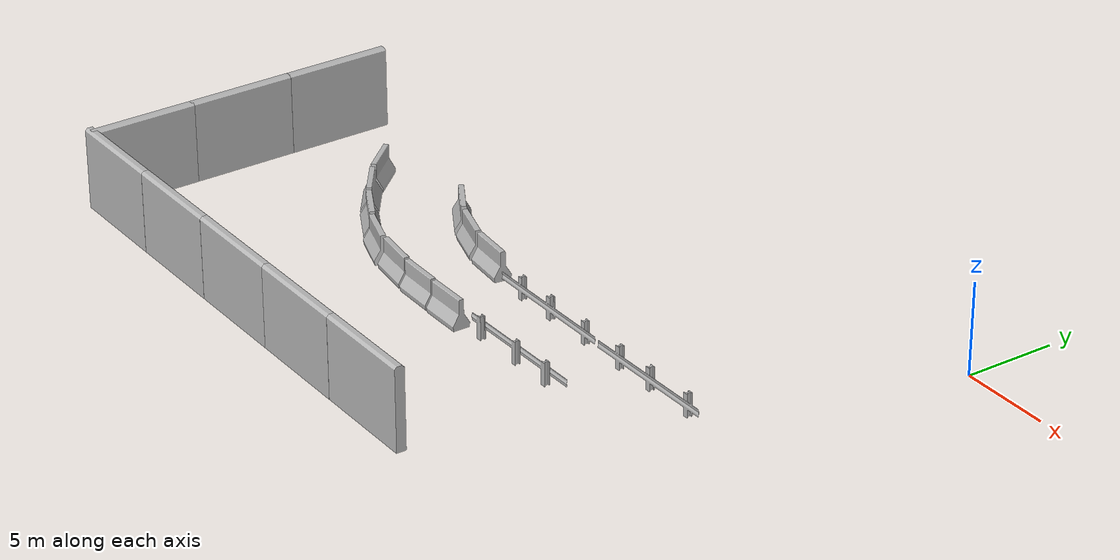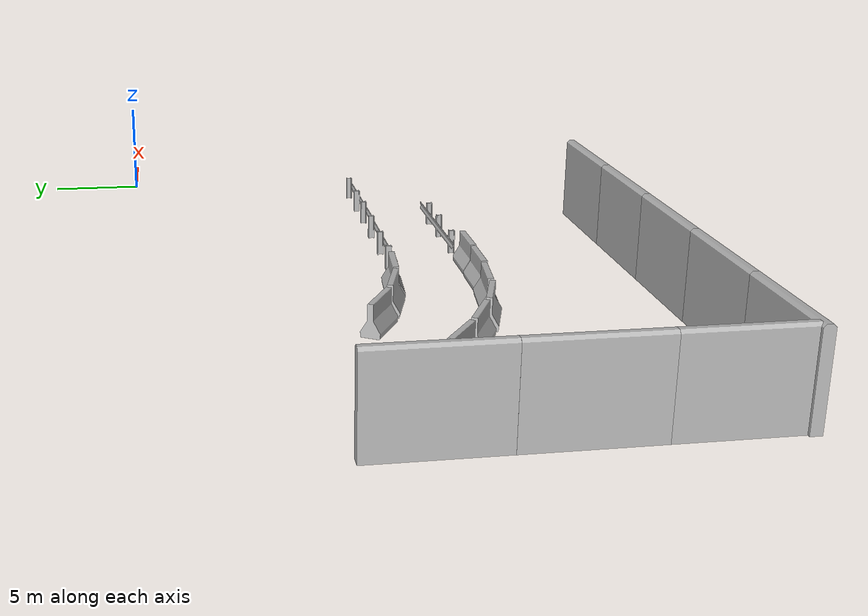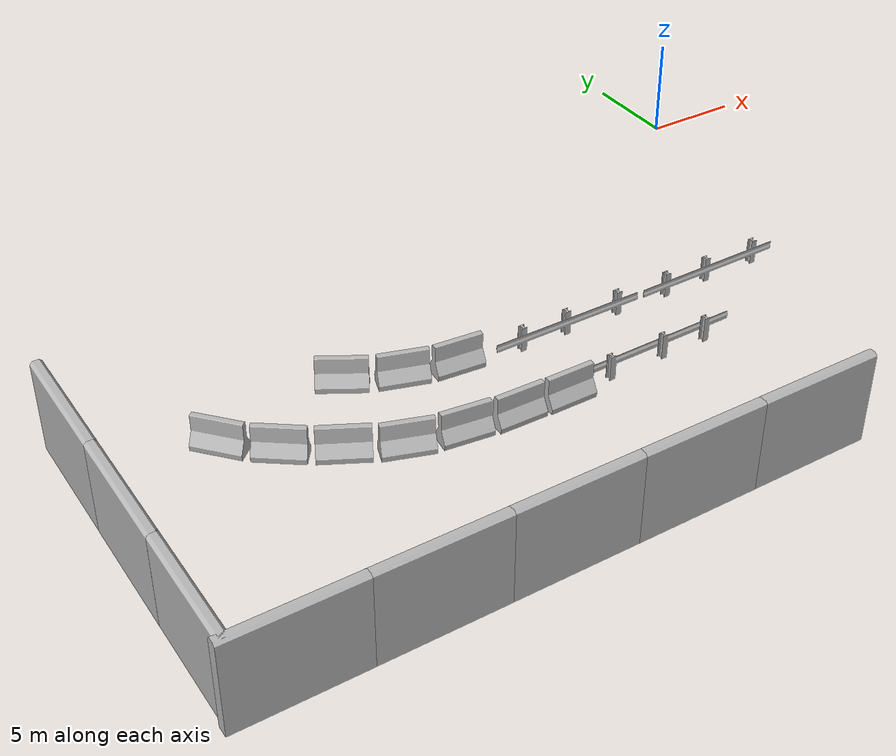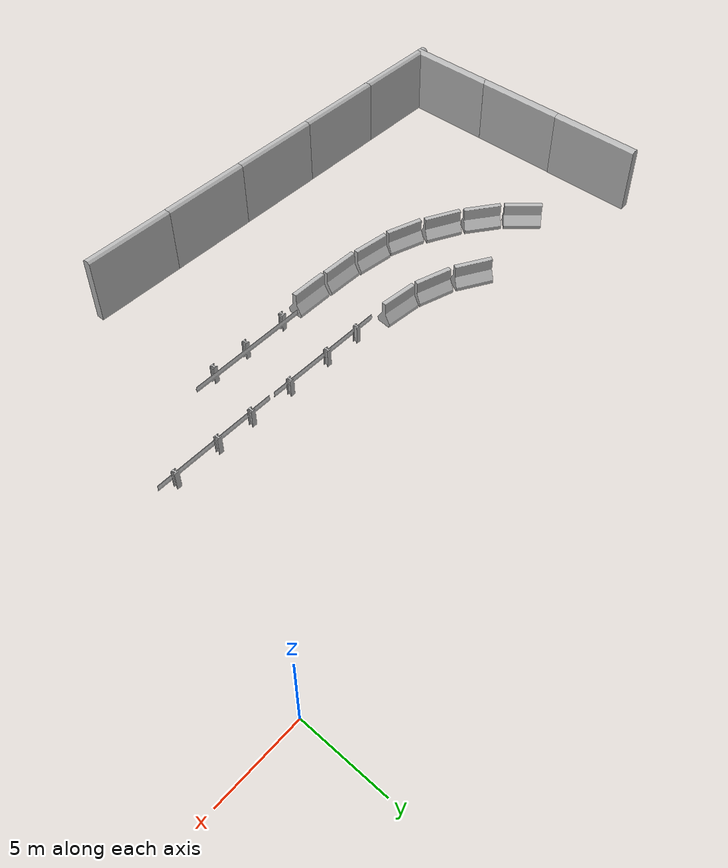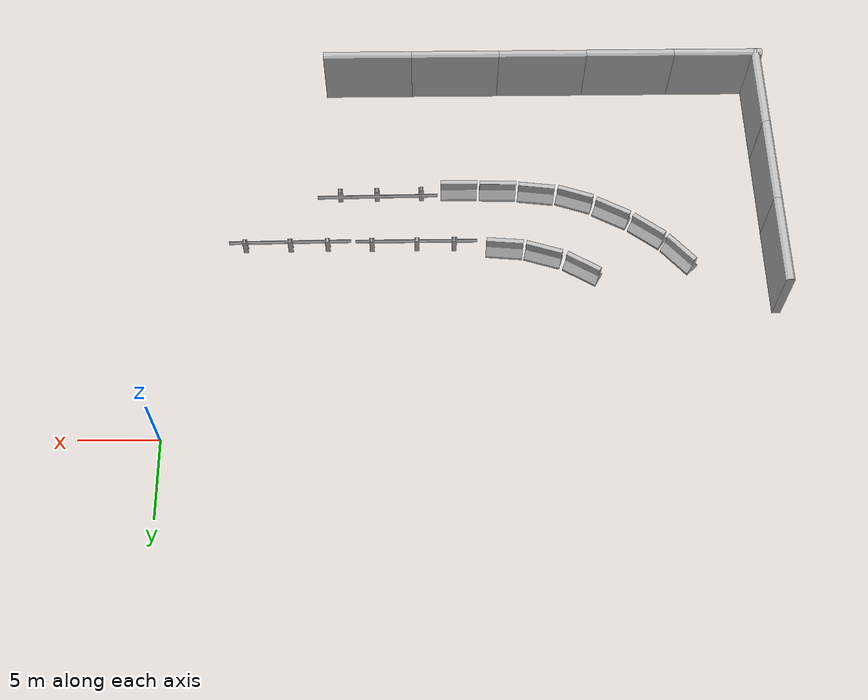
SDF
<sdf version="1.7">
 <world name="default">
  <model name="aws_robomaker_racetrack_Fence_01_04">
   <frame name="aws_Fence_01::__model__" attached_to="aws_Fence_01::body">
    <pose relative_to="__model__">0 0 0 0 -0 0</pose>
   </frame>
   <link name="aws_Fence_01::body">
    <pose relative_to="aws_Fence_01::__model__">0 0 0 0 -0 0</pose>
    <inertial>
     <mass>5</mass>
     <inertia><ixx>1</ixx><ixy>0</ixy><ixz>0</ixz><iyy>1</iyy><iyz>0</iyz><izz>1</izz></inertia>
    </inertial>
    <visual name="visual">
     <geometry>
      <mesh><uri>file://models/aws_robomaker_racetrack_Fence_01/meshes/aws_Fence_01_visual.DAE</uri></mesh>
     </geometry>
     <material><shader type="pixel"><normal_map>__default__</normal_map></shader></material>
     <meta><layer>0</layer></meta>
    </visual>
    <collision name="collision_0">
     <geometry>
      <mesh>
       <uri>file://models/aws_robomaker_racetrack_Fence_01/meshes/aws_Fence_01_collision.DAE</uri>
       <scale>1 1 1</scale>
      </mesh>
     </geometry>
     <surface>
      <friction>
       <ode><mu>1</mu><mu2>1</mu2><fdir1>0 0 0</fdir1><slip1>0</slip1><slip2>0</slip2></ode>
       <torsional>
        <coefficient>1</coefficient>
        <patch_radius>0</patch_radius>
        <surface_radius>0</surface_radius>
        <use_patch_radius>1</use_patch_radius>
        <ode><slip>0</slip></ode>
       </torsional>
      </friction>
      <bounce><restitution_coefficient>0</restitution_coefficient><threshold>1e+06</threshold></bounce>
      <contact>
       <collide_without_contact>0</collide_without_contact>
       <collide_without_contact_bitmask>1</collide_without_contact_bitmask>
       <collide_bitmask>1</collide_bitmask>
       <ode>
        <soft_cfm>0</soft_cfm>
        <soft_erp>0.2</soft_erp>
        <kp>1e+13</kp>
        <kd>1</kd>
        <max_vel>0.01</max_vel>
        <min_depth>0</min_depth>
       </ode>
       <bullet>
        <split_impulse>1</split_impulse>
        <split_impulse_penetration_threshold>-0.01</split_impulse_penetration_threshold>
        <soft_cfm>0</soft_cfm>
        <soft_erp>0.2</soft_erp>
        <kp>1e+13</kp>
        <kd>1</kd>
       </bullet>
      </contact>
     </surface>
    </collision>
   </link>
   <static>1</static>
   <pose>-12.9904 -16.8572 0.054 0 0 -1.55861</pose>
  </model>
  <model name="aws_robomaker_racetrack_Fence_01_08">
   <frame name="aws_Fence_01::__model__" attached_to="aws_Fence_01::body">
    <pose relative_to="__model__">0 0 0 0 -0 0</pose>
   </frame>
   <link name="aws_Fence_01::body">
    <pose relative_to="aws_Fence_01::__model__">0 0 0 0 -0 0</pose>
    <inertial>
     <mass>5</mass>
     <inertia><ixx>1</ixx><ixy>0</ixy><ixz>0</ixz><iyy>1</iyy><iyz>0</iyz><izz>1</izz></inertia>
    </inertial>
    <visual name="visual">
     <geometry>
      <mesh><uri>file://models/aws_robomaker_racetrack_Fence_01/meshes/aws_Fence_01_visual.DAE</uri></mesh>
     </geometry>
     <material><shader type="pixel"><normal_map>__default__</normal_map></shader></material>
     <meta><layer>0</layer></meta>
    </visual>
    <collision name="collision_0">
     <geometry>
      <mesh>
       <uri>file://models/aws_robomaker_racetrack_Fence_01/meshes/aws_Fence_01_collision.DAE</uri>
       <scale>1 1 1</scale>
      </mesh>
     </geometry>
     <surface>
      <friction>
       <ode><mu>1</mu><mu2>1</mu2><fdir1>0 0 0</fdir1><slip1>0</slip1><slip2>0</slip2></ode>
       <torsional>
        <coefficient>1</coefficient>
        <patch_radius>0</patch_radius>
        <surface_radius>0</surface_radius>
        <use_patch_radius>1</use_patch_radius>
        <ode><slip>0</slip></ode>
       </torsional>
      </friction>
      <bounce><restitution_coefficient>0</restitution_coefficient><threshold>1e+06</threshold></bounce>
      <contact>
       <collide_without_contact>0</collide_without_contact>
       <collide_without_contact_bitmask>1</collide_without_contact_bitmask>
       <collide_bitmask>1</collide_bitmask>
       <ode>
        <soft_cfm>0</soft_cfm>
        <soft_erp>0.2</soft_erp>
        <kp>1e+13</kp>
        <kd>1</kd>
        <max_vel>0.01</max_vel>
        <min_depth>0</min_depth>
       </ode>
       <bullet>
        <split_impulse>1</split_impulse>
        <split_impulse_penetration_threshold>-0.01</split_impulse_penetration_threshold>
        <soft_cfm>0</soft_cfm>
        <soft_erp>0.2</soft_erp>
        <kp>1e+13</kp>
        <kd>1</kd>
       </bullet>
      </contact>
     </surface>
    </collision>
   </link>
   <static>1</static>
   <pose>-15.529 -13.1346 0.054 0 -0 1.57158</pose>
  </model>
  <model name="aws_robomaker_racetrack_Fence_01_09">
   <frame name="aws_Fence_01::__model__" attached_to="aws_Fence_01::body">
    <pose relative_to="__model__">0 0 0 0 -0 0</pose>
   </frame>
   <link name="aws_Fence_01::body">
    <pose relative_to="aws_Fence_01::__model__">0 0 0 0 -0 0</pose>
    <inertial>
     <mass>5</mass>
     <inertia><ixx>1</ixx><ixy>0</ixy><ixz>0</ixz><iyy>1</iyy><iyz>0</iyz><izz>1</izz></inertia>
    </inertial>
    <visual name="visual">
     <geometry>
      <mesh><uri>file://models/aws_robomaker_racetrack_Fence_01/meshes/aws_Fence_01_visual.DAE</uri></mesh>
     </geometry>
     <material><shader type="pixel"><normal_map>__default__</normal_map></shader></material>
     <meta><layer>0</layer></meta>
    </visual>
    <collision name="collision_0">
     <geometry>
      <mesh>
       <uri>file://models/aws_robomaker_racetrack_Fence_01/meshes/aws_Fence_01_collision.DAE</uri>
       <scale>1 1 1</scale>
      </mesh>
     </geometry>
     <surface>
      <friction>
       <ode><mu>1</mu><mu2>1</mu2><fdir1>0 0 0</fdir1><slip1>0</slip1><slip2>0</slip2></ode>
       <torsional>
        <coefficient>1</coefficient>
        <patch_radius>0</patch_radius>
        <surface_radius>0</surface_radius>
        <use_patch_radius>1</use_patch_radius>
        <ode><slip>0</slip></ode>
       </torsional>
      </friction>
      <bounce><restitution_coefficient>0</restitution_coefficient><threshold>1e+06</threshold></bounce>
      <contact>
       <collide_without_contact>0</collide_without_contact>
       <collide_without_contact_bitmask>1</collide_without_contact_bitmask>
       <collide_bitmask>1</collide_bitmask>
       <ode>
        <soft_cfm>0</soft_cfm>
        <soft_erp>0.2</soft_erp>
        <kp>1e+13</kp>
        <kd>1</kd>
        <max_vel>0.01</max_vel>
        <min_depth>0</min_depth>
       </ode>
       <bullet>
        <split_impulse>1</split_impulse>
        <split_impulse_penetration_threshold>-0.01</split_impulse_penetration_threshold>
        <soft_cfm>0</soft_cfm>
        <soft_erp>0.2</soft_erp>
        <kp>1e+13</kp>
        <kd>1</kd>
       </bullet>
      </contact>
     </surface>
    </collision>
   </link>
   <static>1</static>
   <pose>-7.39105 -13.1346 0.054651 0 -0 1.5804</pose>
  </model>
  <model name="aws_robomaker_racetrack_StonePier_01_00">
   <frame name="aws_StonePier_01::__model__" attached_to="aws_StonePier_01::body">
    <pose relative_to="__model__">0 0 0 0 -0 0</pose>
   </frame>
   <link name="aws_StonePier_01::body">
    <pose relative_to="aws_StonePier_01::__model__">0 0 0 0 -0 0</pose>
    <inertial>
     <mass>10</mass>
     <inertia><ixx>0</ixx><ixy>0</ixy><ixz>0</ixz><iyy>0</iyy><iyz>0</iyz><izz>0</izz></inertia>
    </inertial>
    <visual name="visual">
     <geometry>
      <mesh><uri>file://models/aws_robomaker_racetrack_StonePier_01/meshes/aws_StonePier_01_visual.DAE</uri></mesh>
     </geometry>
     <material><shader type="pixel"><normal_map>__default__</normal_map></shader></material>
     <meta><layer>0</layer></meta>
    </visual>
    <collision name="collision_0">
     <geometry>
      <mesh>
       <uri>file://models/aws_robomaker_racetrack_StonePier_01/meshes/aws_StonePier_01_collision.DAE</uri>
       <scale>1 1 1</scale>
      </mesh>
     </geometry>
     <surface>
      <friction>
       <ode><mu>1</mu><mu2>1</mu2><fdir1>0 0 0</fdir1><slip1>0</slip1><slip2>0</slip2></ode>
       <torsional>
        <coefficient>1</coefficient>
        <patch_radius>0</patch_radius>
        <surface_radius>0</surface_radius>
        <use_patch_radius>1</use_patch_radius>
        <ode><slip>0</slip></ode>
       </torsional>
      </friction>
      <bounce><restitution_coefficient>0</restitution_coefficient><threshold>1e+06</threshold></bounce>
      <contact>
       <collide_without_contact>0</collide_without_contact>
       <collide_without_contact_bitmask>1</collide_without_contact_bitmask>
       <collide_bitmask>1</collide_bitmask>
       <ode>
        <soft_cfm>0</soft_cfm>
        <soft_erp>0.2</soft_erp>
        <kp>1e+13</kp>
        <kd>1</kd>
        <max_vel>0.01</max_vel>
        <min_depth>0</min_depth>
       </ode>
       <bullet>
        <split_impulse>1</split_impulse>
        <split_impulse_penetration_threshold>-0.01</split_impulse_penetration_threshold>
        <soft_cfm>0</soft_cfm>
        <soft_erp>0.2</soft_erp>
        <kp>1e+13</kp>
        <kd>1</kd>
       </bullet>
      </contact>
     </surface>
    </collision>
   </link>
   <static>1</static>
   <pose>-21.1732 -12.7799 0.054 0 0 -0.086667</pose>
  </model>
  <model name="aws_robomaker_racetrack_StonePier_01_01">
   <frame name="aws_StonePier_01::__model__" attached_to="aws_StonePier_01::body">
    <pose relative_to="__model__">0 0 0 0 -0 0</pose>
   </frame>
   <link name="aws_StonePier_01::body">
    <pose relative_to="aws_StonePier_01::__model__">0 0 0 0 -0 0</pose>
    <inertial>
     <mass>10</mass>
     <inertia><ixx>0</ixx><ixy>0</ixy><ixz>0</ixz><iyy>0</iyy><iyz>0</iyz><izz>0</izz></inertia>
    </inertial>
    <visual name="visual">
     <geometry>
      <mesh><uri>file://models/aws_robomaker_racetrack_StonePier_01/meshes/aws_StonePier_01_visual.DAE</uri></mesh>
     </geometry>
     <material><shader type="pixel"><normal_map>__default__</normal_map></shader></material>
     <meta><layer>0</layer></meta>
    </visual>
    <collision name="collision_0">
     <geometry>
      <mesh>
       <uri>file://models/aws_robomaker_racetrack_StonePier_01/meshes/aws_StonePier_01_collision.DAE</uri>
       <scale>1 1 1</scale>
      </mesh>
     </geometry>
     <surface>
      <friction>
       <ode><mu>1</mu><mu2>1</mu2><fdir1>0 0 0</fdir1><slip1>0</slip1><slip2>0</slip2></ode>
       <torsional>
        <coefficient>1</coefficient>
        <patch_radius>0</patch_radius>
        <surface_radius>0</surface_radius>
        <use_patch_radius>1</use_patch_radius>
        <ode><slip>0</slip></ode>
       </torsional>
      </friction>
      <bounce><restitution_coefficient>0</restitution_coefficient><threshold>1e+06</threshold></bounce>
      <contact>
       <collide_without_contact>0</collide_without_contact>
       <collide_without_contact_bitmask>1</collide_without_contact_bitmask>
       <collide_bitmask>1</collide_bitmask>
       <ode>
        <soft_cfm>0</soft_cfm>
        <soft_erp>0.2</soft_erp>
        <kp>1e+13</kp>
        <kd>1</kd>
        <max_vel>0.01</max_vel>
        <min_depth>0</min_depth>
       </ode>
       <bullet>
        <split_impulse>1</split_impulse>
        <split_impulse_penetration_threshold>-0.01</split_impulse_penetration_threshold>
        <soft_cfm>0</soft_cfm>
        <soft_erp>0.2</soft_erp>
        <kp>1e+13</kp>
        <kd>1</kd>
       </bullet>
      </contact>
     </surface>
    </collision>
   </link>
   <static>1</static>
   <pose>-23.6727 -12.2854 0.054 0 0 -0.301631</pose>
  </model>
  <model name="aws_robomaker_racetrack_StonePier_01_40">
   <frame name="aws_StonePier_01::__model__" attached_to="aws_StonePier_01::body">
    <pose relative_to="__model__">0 0 0 0 -0 0</pose>
   </frame>
   <link name="aws_StonePier_01::body">
    <pose relative_to="aws_StonePier_01::__model__">0 0 0 0 -0 0</pose>
    <inertial>
     <mass>10</mass>
     <inertia><ixx>0</ixx><ixy>0</ixy><ixz>0</ixz><iyy>0</iyy><iyz>0</iyz><izz>0</izz></inertia>
    </inertial>
    <visual name="visual">
     <geometry>
      <mesh><uri>file://models/aws_robomaker_racetrack_StonePier_01/meshes/aws_StonePier_01_visual.DAE</uri></mesh>
     </geometry>
     <material><shader type="pixel"><normal_map>__default__</normal_map></shader></material>
     <meta><layer>0</layer></meta>
    </visual>
    <collision name="collision_0">
     <geometry>
      <mesh>
       <uri>file://models/aws_robomaker_racetrack_StonePier_01/meshes/aws_StonePier_01_collision.DAE</uri>
       <scale>1 1 1</scale>
      </mesh>
     </geometry>
     <surface>
      <friction>
       <ode><mu>1</mu><mu2>1</mu2><fdir1>0 0 0</fdir1><slip1>0</slip1><slip2>0</slip2></ode>
       <torsional>
        <coefficient>1</coefficient>
        <patch_radius>0</patch_radius>
        <surface_radius>0</surface_radius>
        <use_patch_radius>1</use_patch_radius>
        <ode><slip>0</slip></ode>
       </torsional>
      </friction>
      <bounce><restitution_coefficient>0</restitution_coefficient><threshold>1e+06</threshold></bounce>
      <contact>
       <collide_without_contact>0</collide_without_contact>
       <collide_without_contact_bitmask>1</collide_without_contact_bitmask>
       <collide_bitmask>1</collide_bitmask>
       <ode>
        <soft_cfm>0</soft_cfm>
        <soft_erp>0.2</soft_erp>
        <kp>1e+13</kp>
        <kd>1</kd>
        <max_vel>0.01</max_vel>
        <min_depth>0</min_depth>
       </ode>
       <bullet>
        <split_impulse>1</split_impulse>
        <split_impulse_penetration_threshold>-0.01</split_impulse_penetration_threshold>
        <soft_cfm>0</soft_cfm>
        <soft_erp>0.2</soft_erp>
        <kp>1e+13</kp>
        <kd>1</kd>
       </bullet>
      </contact>
     </surface>
    </collision>
   </link>
   <static>1</static>
   <pose>-18.3212 -17.1986 0.054 0 0 -0.000165</pose>
  </model>
  <model name="aws_robomaker_racetrack_StonePier_01_41">
   <frame name="aws_StonePier_01::__model__" attached_to="aws_StonePier_01::body">
    <pose relative_to="__model__">0 0 0 0 -0 0</pose>
   </frame>
   <link name="aws_StonePier_01::body">
    <pose relative_to="aws_StonePier_01::__model__">0 0 0 0 -0 0</pose>
    <inertial>
     <mass>10</mass>
     <inertia><ixx>0</ixx><ixy>0</ixy><ixz>0</ixz><iyy>0</iyy><iyz>0</iyz><izz>0</izz></inertia>
    </inertial>
    <visual name="visual">
     <geometry>
      <mesh><uri>file://models/aws_robomaker_racetrack_StonePier_01/meshes/aws_StonePier_01_visual.DAE</uri></mesh>
     </geometry>
     <material><shader type="pixel"><normal_map>__default__</normal_map></shader></material>
     <meta><layer>0</layer></meta>
    </visual>
    <collision name="collision_0">
     <geometry>
      <mesh>
       <uri>file://models/aws_robomaker_racetrack_StonePier_01/meshes/aws_StonePier_01_collision.DAE</uri>
       <scale>1 1 1</scale>
      </mesh>
     </geometry>
     <surface>
      <friction>
       <ode><mu>1</mu><mu2>1</mu2><fdir1>0 0 0</fdir1><slip1>0</slip1><slip2>0</slip2></ode>
       <torsional>
        <coefficient>1</coefficient>
        <patch_radius>0</patch_radius>
        <surface_radius>0</surface_radius>
        <use_patch_radius>1</use_patch_radius>
        <ode><slip>0</slip></ode>
       </torsional>
      </friction>
      <bounce><restitution_coefficient>0</restitution_coefficient><threshold>1e+06</threshold></bounce>
      <contact>
       <collide_without_contact>0</collide_without_contact>
       <collide_without_contact_bitmask>1</collide_without_contact_bitmask>
       <collide_bitmask>1</collide_bitmask>
       <ode>
        <soft_cfm>0</soft_cfm>
        <soft_erp>0.2</soft_erp>
        <kp>1e+13</kp>
        <kd>1</kd>
        <max_vel>0.01</max_vel>
        <min_depth>0</min_depth>
       </ode>
       <bullet>
        <split_impulse>1</split_impulse>
        <split_impulse_penetration_threshold>-0.01</split_impulse_penetration_threshold>
        <soft_cfm>0</soft_cfm>
        <soft_erp>0.2</soft_erp>
        <kp>1e+13</kp>
        <kd>1</kd>
       </bullet>
      </contact>
     </surface>
    </collision>
   </link>
   <static>1</static>
   <pose>-26.1157 -11.2238 0.054 0 0 -0.528829</pose>
  </model>
  <model name="aws_robomaker_racetrack_StonePier_01_52">
   <frame name="aws_StonePier_01::__model__" attached_to="aws_StonePier_01::body">
    <pose relative_to="__model__">0 0 0 0 -0 0</pose>
   </frame>
   <link name="aws_StonePier_01::body">
    <pose relative_to="aws_StonePier_01::__model__">0 0 0 0 -0 0</pose>
    <inertial>
     <mass>10</mass>
     <inertia><ixx>0</ixx><ixy>0</ixy><ixz>0</ixz><iyy>0</iyy><iyz>0</iyz><izz>0</izz></inertia>
    </inertial>
    <visual name="visual">
     <geometry>
      <mesh><uri>file://models/aws_robomaker_racetrack_StonePier_01/meshes/aws_StonePier_01_visual.DAE</uri></mesh>
     </geometry>
     <material><shader type="pixel"><normal_map>__default__</normal_map></shader></material>
     <meta><layer>0</layer></meta>
    </visual>
    <collision name="collision_0">
     <geometry>
      <mesh>
       <uri>file://models/aws_robomaker_racetrack_StonePier_01/meshes/aws_StonePier_01_collision.DAE</uri>
       <scale>1 1 1</scale>
      </mesh>
     </geometry>
     <surface>
      <friction>
       <ode><mu>1</mu><mu2>1</mu2><fdir1>0 0 0</fdir1><slip1>0</slip1><slip2>0</slip2></ode>
       <torsional>
        <coefficient>1</coefficient>
        <patch_radius>0</patch_radius>
        <surface_radius>0</surface_radius>
        <use_patch_radius>1</use_patch_radius>
        <ode><slip>0</slip></ode>
       </torsional>
      </friction>
      <bounce><restitution_coefficient>0</restitution_coefficient><threshold>1e+06</threshold></bounce>
      <contact>
       <collide_without_contact>0</collide_without_contact>
       <collide_without_contact_bitmask>1</collide_without_contact_bitmask>
       <collide_bitmask>1</collide_bitmask>
       <ode>
        <soft_cfm>0</soft_cfm>
        <soft_erp>0.2</soft_erp>
        <kp>1e+13</kp>
        <kd>1</kd>
        <max_vel>0.01</max_vel>
        <min_depth>0</min_depth>
       </ode>
       <bullet>
        <split_impulse>1</split_impulse>
        <split_impulse_penetration_threshold>-0.01</split_impulse_penetration_threshold>
        <soft_cfm>0</soft_cfm>
        <soft_erp>0.2</soft_erp>
        <kp>1e+13</kp>
        <kd>1</kd>
       </bullet>
      </contact>
     </surface>
    </collision>
   </link>
   <static>1</static>
   <pose>-28.2666 -15.3279 0.054 0 0.00036 -0.483595</pose>
  </model>
  <model name="aws_robomaker_racetrack_StonePier_01_53">
   <frame name="aws_StonePier_01::__model__" attached_to="aws_StonePier_01::body">
    <pose relative_to="__model__">0 0 0 0 -0 0</pose>
   </frame>
   <link name="aws_StonePier_01::body">
    <pose relative_to="aws_StonePier_01::__model__">0 0 0 0 -0 0</pose>
    <inertial>
     <mass>10</mass>
     <inertia><ixx>0</ixx><ixy>0</ixy><ixz>0</ixz><iyy>0</iyy><iyz>0</iyz><izz>0</izz></inertia>
    </inertial>
    <visual name="visual">
     <geometry>
      <mesh><uri>file://models/aws_robomaker_racetrack_StonePier_01/meshes/aws_StonePier_01_visual.DAE</uri></mesh>
     </geometry>
     <material><shader type="pixel"><normal_map>__default__</normal_map></shader></material>
     <meta><layer>0</layer></meta>
    </visual>
    <collision name="collision_0">
     <geometry>
      <mesh>
       <uri>file://models/aws_robomaker_racetrack_StonePier_01/meshes/aws_StonePier_01_collision.DAE</uri>
       <scale>1 1 1</scale>
      </mesh>
     </geometry>
     <surface>
      <friction>
       <ode><mu>1</mu><mu2>1</mu2><fdir1>0 0 0</fdir1><slip1>0</slip1><slip2>0</slip2></ode>
       <torsional>
        <coefficient>1</coefficient>
        <patch_radius>0</patch_radius>
        <surface_radius>0</surface_radius>
        <use_patch_radius>1</use_patch_radius>
        <ode><slip>0</slip></ode>
       </torsional>
      </friction>
      <bounce><restitution_coefficient>0</restitution_coefficient><threshold>1e+06</threshold></bounce>
      <contact>
       <collide_without_contact>0</collide_without_contact>
       <collide_without_contact_bitmask>1</collide_without_contact_bitmask>
       <collide_bitmask>1</collide_bitmask>
       <ode>
        <soft_cfm>0</soft_cfm>
        <soft_erp>0.2</soft_erp>
        <kp>1e+13</kp>
        <kd>1</kd>
        <max_vel>0.01</max_vel>
        <min_depth>0</min_depth>
       </ode>
       <bullet>
        <split_impulse>1</split_impulse>
        <split_impulse_penetration_threshold>-0.01</split_impulse_penetration_threshold>
        <soft_cfm>0</soft_cfm>
        <soft_erp>0.2</soft_erp>
        <kp>1e+13</kp>
        <kd>1</kd>
       </bullet>
      </contact>
     </surface>
    </collision>
   </link>
   <static>1</static>
   <pose>-30.4813 -13.931 0.054 0 -0 2.50624</pose>
  </model>
  <model name="aws_robomaker_racetrack_StonePier_01_54">
   <frame name="aws_StonePier_01::__model__" attached_to="aws_StonePier_01::body">
    <pose relative_to="__model__">0 0 0 0 -0 0</pose>
   </frame>
   <link name="aws_StonePier_01::body">
    <pose relative_to="aws_StonePier_01::__model__">0 0 0 0 -0 0</pose>
    <inertial>
     <mass>10</mass>
     <inertia><ixx>0</ixx><ixy>0</ixy><ixz>0</ixz><iyy>0</iyy><iyz>0</iyz><izz>0</izz></inertia>
    </inertial>
    <visual name="visual">
     <geometry>
      <mesh><uri>file://models/aws_robomaker_racetrack_StonePier_01/meshes/aws_StonePier_01_visual.DAE</uri></mesh>
     </geometry>
     <material><shader type="pixel"><normal_map>__default__</normal_map></shader></material>
     <meta><layer>0</layer></meta>
    </visual>
    <collision name="collision_0">
     <geometry>
      <mesh>
       <uri>file://models/aws_robomaker_racetrack_StonePier_01/meshes/aws_StonePier_01_collision.DAE</uri>
       <scale>1 1 1</scale>
      </mesh>
     </geometry>
     <surface>
      <friction>
       <ode><mu>1</mu><mu2>1</mu2><fdir1>0 0 0</fdir1><slip1>0</slip1><slip2>0</slip2></ode>
       <torsional>
        <coefficient>1</coefficient>
        <patch_radius>0</patch_radius>
        <surface_radius>0</surface_radius>
        <use_patch_radius>1</use_patch_radius>
        <ode><slip>0</slip></ode>
       </torsional>
      </friction>
      <bounce><restitution_coefficient>0</restitution_coefficient><threshold>1e+06</threshold></bounce>
      <contact>
       <collide_without_contact>0</collide_without_contact>
       <collide_without_contact_bitmask>1</collide_without_contact_bitmask>
       <collide_bitmask>1</collide_bitmask>
       <ode>
        <soft_cfm>0</soft_cfm>
        <soft_erp>0.2</soft_erp>
        <kp>1e+13</kp>
        <kd>1</kd>
        <max_vel>0.01</max_vel>
        <min_depth>0</min_depth>
       </ode>
       <bullet>
        <split_impulse>1</split_impulse>
        <split_impulse_penetration_threshold>-0.01</split_impulse_penetration_threshold>
        <soft_cfm>0</soft_cfm>
        <soft_erp>0.2</soft_erp>
        <kp>1e+13</kp>
        <kd>1</kd>
       </bullet>
      </contact>
     </surface>
    </collision>
   </link>
   <static>1</static>
   <pose>-32.3931 -12.181 0.054 0 -0 2.30053</pose>
  </model>
  <model name="aws_robomaker_racetrack_StonePier_01_68">
   <frame name="aws_StonePier_01::__model__" attached_to="aws_StonePier_01::body">
    <pose relative_to="__model__">0 0 0 0 -0 0</pose>
   </frame>
   <link name="aws_StonePier_01::body">
    <pose relative_to="aws_StonePier_01::__model__">0 0 0 0 -0 0</pose>
    <inertial>
     <mass>10</mass>
     <inertia><ixx>0</ixx><ixy>0</ixy><ixz>0</ixz><iyy>0</iyy><iyz>0</iyz><izz>0</izz></inertia>
    </inertial>
    <visual name="visual">
     <geometry>
      <mesh><uri>file://models/aws_robomaker_racetrack_StonePier_01/meshes/aws_StonePier_01_visual.DAE</uri></mesh>
     </geometry>
     <material><shader type="pixel"><normal_map>__default__</normal_map></shader></material>
     <meta><layer>0</layer></meta>
    </visual>
    <collision name="collision_0">
     <geometry>
      <mesh>
       <uri>file://models/aws_robomaker_racetrack_StonePier_01/meshes/aws_StonePier_01_collision.DAE</uri>
       <scale>1 1 1</scale>
      </mesh>
     </geometry>
     <surface>
      <friction>
       <ode><mu>1</mu><mu2>1</mu2><fdir1>0 0 0</fdir1><slip1>0</slip1><slip2>0</slip2></ode>
       <torsional>
        <coefficient>1</coefficient>
        <patch_radius>0</patch_radius>
        <surface_radius>0</surface_radius>
        <use_patch_radius>1</use_patch_radius>
        <ode><slip>0</slip></ode>
       </torsional>
      </friction>
      <bounce><restitution_coefficient>0</restitution_coefficient><threshold>1e+06</threshold></bounce>
      <contact>
       <collide_without_contact>0</collide_without_contact>
       <collide_without_contact_bitmask>1</collide_without_contact_bitmask>
       <collide_bitmask>1</collide_bitmask>
       <ode>
        <soft_cfm>0</soft_cfm>
        <soft_erp>0.2</soft_erp>
        <kp>1e+13</kp>
        <kd>1</kd>
        <max_vel>0.01</max_vel>
        <min_depth>0</min_depth>
       </ode>
       <bullet>
        <split_impulse>1</split_impulse>
        <split_impulse_penetration_threshold>-0.01</split_impulse_penetration_threshold>
        <soft_cfm>0</soft_cfm>
        <soft_erp>0.2</soft_erp>
        <kp>1e+13</kp>
        <kd>1</kd>
       </bullet>
      </contact>
     </surface>
    </collision>
   </link>
   <static>1</static>
   <pose>-20.8526 -17.1365 0.054 -0 0.00036 -0.016586</pose>
  </model>
  <model name="aws_robomaker_racetrack_StonePier_01_69">
   <frame name="aws_StonePier_01::__model__" attached_to="aws_StonePier_01::body">
    <pose relative_to="__model__">0 0 0 0 -0 0</pose>
   </frame>
   <link name="aws_StonePier_01::body">
    <pose relative_to="aws_StonePier_01::__model__">0 0 0 0 -0 0</pose>
    <inertial>
     <mass>10</mass>
     <inertia><ixx>0</ixx><ixy>0</ixy><ixz>0</ixz><iyy>0</iyy><iyz>0</iyz><izz>0</izz></inertia>
    </inertial>
    <visual name="visual">
     <geometry>
      <mesh><uri>file://models/aws_robomaker_racetrack_StonePier_01/meshes/aws_StonePier_01_visual.DAE</uri></mesh>
     </geometry>
     <material><shader type="pixel"><normal_map>__default__</normal_map></shader></material>
     <meta><layer>0</layer></meta>
    </visual>
    <collision name="collision_0">
     <geometry>
      <mesh>
       <uri>file://models/aws_robomaker_racetrack_StonePier_01/meshes/aws_StonePier_01_collision.DAE</uri>
       <scale>1 1 1</scale>
      </mesh>
     </geometry>
     <surface>
      <friction>
       <ode><mu>1</mu><mu2>1</mu2><fdir1>0 0 0</fdir1><slip1>0</slip1><slip2>0</slip2></ode>
       <torsional>
        <coefficient>1</coefficient>
        <patch_radius>0</patch_radius>
        <surface_radius>0</surface_radius>
        <use_patch_radius>1</use_patch_radius>
        <ode><slip>0</slip></ode>
       </torsional>
      </friction>
      <bounce><restitution_coefficient>0</restitution_coefficient><threshold>1e+06</threshold></bounce>
      <contact>
       <collide_without_contact>0</collide_without_contact>
       <collide_without_contact_bitmask>1</collide_without_contact_bitmask>
       <collide_bitmask>1</collide_bitmask>
       <ode>
        <soft_cfm>0</soft_cfm>
        <soft_erp>0.2</soft_erp>
        <kp>1e+13</kp>
        <kd>1</kd>
        <max_vel>0.01</max_vel>
        <min_depth>0</min_depth>
       </ode>
       <bullet>
        <split_impulse>1</split_impulse>
        <split_impulse_penetration_threshold>-0.01</split_impulse_penetration_threshold>
        <soft_cfm>0</soft_cfm>
        <soft_erp>0.2</soft_erp>
        <kp>1e+13</kp>
        <kd>1</kd>
       </bullet>
      </contact>
     </surface>
    </collision>
   </link>
   <static>1</static>
   <pose>-23.3756 -16.9024 0.054 0 0 -0.119704</pose>
  </model>
  <model name="aws_robomaker_racetrack_StonePier_01_70">
   <frame name="aws_StonePier_01::__model__" attached_to="aws_StonePier_01::body">
    <pose relative_to="__model__">0 0 0 0 -0 0</pose>
   </frame>
   <link name="aws_StonePier_01::body">
    <pose relative_to="aws_StonePier_01::__model__">0 0 0 0 -0 0</pose>
    <inertial>
     <mass>10</mass>
     <inertia><ixx>0</ixx><ixy>0</ixy><ixz>0</ixz><iyy>0</iyy><iyz>0</iyz><izz>0</izz></inertia>
    </inertial>
    <visual name="visual">
     <geometry>
      <mesh><uri>file://models/aws_robomaker_racetrack_StonePier_01/meshes/aws_StonePier_01_visual.DAE</uri></mesh>
     </geometry>
     <material><shader type="pixel"><normal_map>__default__</normal_map></shader></material>
     <meta><layer>0</layer></meta>
    </visual>
    <collision name="collision_0">
     <geometry>
      <mesh>
       <uri>file://models/aws_robomaker_racetrack_StonePier_01/meshes/aws_StonePier_01_collision.DAE</uri>
       <scale>1 1 1</scale>
      </mesh>
     </geometry>
     <surface>
      <friction>
       <ode><mu>1</mu><mu2>1</mu2><fdir1>0 0 0</fdir1><slip1>0</slip1><slip2>0</slip2></ode>
       <torsional>
        <coefficient>1</coefficient>
        <patch_radius>0</patch_radius>
        <surface_radius>0</surface_radius>
        <use_patch_radius>1</use_patch_radius>
        <ode><slip>0</slip></ode>
       </torsional>
      </friction>
      <bounce><restitution_coefficient>0</restitution_coefficient><threshold>1e+06</threshold></bounce>
      <contact>
       <collide_without_contact>0</collide_without_contact>
       <collide_without_contact_bitmask>1</collide_without_contact_bitmask>
       <collide_bitmask>1</collide_bitmask>
       <ode>
        <soft_cfm>0</soft_cfm>
        <soft_erp>0.2</soft_erp>
        <kp>1e+13</kp>
        <kd>1</kd>
        <max_vel>0.01</max_vel>
        <min_depth>0</min_depth>
       </ode>
       <bullet>
        <split_impulse>1</split_impulse>
        <split_impulse_penetration_threshold>-0.01</split_impulse_penetration_threshold>
        <soft_cfm>0</soft_cfm>
        <soft_erp>0.2</soft_erp>
        <kp>1e+13</kp>
        <kd>1</kd>
       </bullet>
      </contact>
     </surface>
    </collision>
   </link>
   <static>1</static>
   <pose>-25.8909 -16.4126 0.054 0 0 -0.32217</pose>
  </model>
  <model name="aws_robomaker_racetrack_Wall_01_09">
   <frame name="aws_Wall_01::__model__" attached_to="aws_Wall_01::body">
    <pose relative_to="__model__">0 0 0 0 -0 0</pose>
   </frame>
   <link name="aws_Wall_01::body">
    <pose relative_to="aws_Wall_01::__model__">0 0 0 0 -0 0</pose>
    <inertial>
     <mass>500</mass>
     <inertia><ixx>1</ixx><ixy>0</ixy><ixz>0</ixz><iyy>1</iyy><iyz>0</iyz><izz>1</izz></inertia>
    </inertial>
    <visual name="visual">
     <geometry>
      <mesh>
       <uri>file://models/aws_robomaker_racetrack_Wall_01/meshes/aws_Wall_01_visual.DAE</uri>
       <scale>2.59853 2.59853 2.59853</scale>
      </mesh>
     </geometry>
     <material><shader type="pixel"><normal_map>__default__</normal_map></shader></material>
     <meta><layer>1</layer></meta>
    </visual>
    <collision name="collision_0">
     <geometry>
      <mesh>
       <uri>file://models/aws_robomaker_racetrack_Wall_01/meshes/aws_Wall_01_collision.DAE</uri>
       <scale>2.59853 2.59853 2.59853</scale>
      </mesh>
     </geometry>
     <surface>
      <friction>
       <ode><mu>1</mu><mu2>1</mu2><fdir1>0 0 0</fdir1><slip1>0</slip1><slip2>0</slip2></ode>
       <torsional>
        <coefficient>1</coefficient>
        <patch_radius>0</patch_radius>
        <surface_radius>0</surface_radius>
        <use_patch_radius>1</use_patch_radius>
        <ode><slip>0</slip></ode>
       </torsional>
      </friction>
      <bounce><restitution_coefficient>0</restitution_coefficient><threshold>1e+06</threshold></bounce>
      <contact>
       <collide_without_contact>0</collide_without_contact>
       <collide_without_contact_bitmask>1</collide_without_contact_bitmask>
       <collide_bitmask>1</collide_bitmask>
       <ode>
        <soft_cfm>0</soft_cfm>
        <soft_erp>0.2</soft_erp>
        <kp>1e+13</kp>
        <kd>1</kd>
        <max_vel>0.01</max_vel>
        <min_depth>0</min_depth>
       </ode>
       <bullet>
        <split_impulse>1</split_impulse>
        <split_impulse_penetration_threshold>-0.01</split_impulse_penetration_threshold>
        <soft_cfm>0</soft_cfm>
        <soft_erp>0.2</soft_erp>
        <kp>1e+13</kp>
        <kd>1</kd>
       </bullet>
      </contact>
     </surface>
    </collision>
   </link>
   <static>1</static>
   <pose>-35.6316 -25.5235 0 0 -0 3.14066</pose>
  </model>
  <model name="aws_robomaker_racetrack_Wall_01_10">
   <frame name="aws_Wall_01::__model__" attached_to="aws_Wall_01::body">
    <pose relative_to="__model__">0 0 0 0 -0 0</pose>
   </frame>
   <link name="aws_Wall_01::body">
    <pose relative_to="aws_Wall_01::__model__">0 0 0 0 -0 0</pose>
    <inertial>
     <mass>500</mass>
     <inertia><ixx>1</ixx><ixy>0</ixy><ixz>0</ixz><iyy>1</iyy><iyz>0</iyz><izz>1</izz></inertia>
    </inertial>
    <visual name="visual">
     <geometry>
      <mesh>
       <uri>file://models/aws_robomaker_racetrack_Wall_01/meshes/aws_Wall_01_visual.DAE</uri>
       <scale>2.59853 2.59853 2.59853</scale>
      </mesh>
     </geometry>
     <material><shader type="pixel"><normal_map>__default__</normal_map></shader></material>
     <meta><layer>1</layer></meta>
    </visual>
    <collision name="collision_0">
     <geometry>
      <mesh>
       <uri>file://models/aws_robomaker_racetrack_Wall_01/meshes/aws_Wall_01_collision.DAE</uri>
       <scale>2.59853 2.59853 2.59853</scale>
      </mesh>
     </geometry>
     <surface>
      <friction>
       <ode><mu>1</mu><mu2>1</mu2><fdir1>0 0 0</fdir1><slip1>0</slip1><slip2>0</slip2></ode>
       <torsional>
        <coefficient>1</coefficient>
        <patch_radius>0</patch_radius>
        <surface_radius>0</surface_radius>
        <use_patch_radius>1</use_patch_radius>
        <ode><slip>0</slip></ode>
       </torsional>
      </friction>
      <bounce><restitution_coefficient>0</restitution_coefficient><threshold>1e+06</threshold></bounce>
      <contact>
       <collide_without_contact>0</collide_without_contact>
       <collide_without_contact_bitmask>1</collide_without_contact_bitmask>
       <collide_bitmask>1</collide_bitmask>
       <ode>
        <soft_cfm>0</soft_cfm>
        <soft_erp>0.2</soft_erp>
        <kp>1e+13</kp>
        <kd>1</kd>
        <max_vel>0.01</max_vel>
        <min_depth>0</min_depth>
       </ode>
       <bullet>
        <split_impulse>1</split_impulse>
        <split_impulse_penetration_threshold>-0.01</split_impulse_penetration_threshold>
        <soft_cfm>0</soft_cfm>
        <soft_erp>0.2</soft_erp>
        <kp>1e+13</kp>
        <kd>1</kd>
       </bullet>
      </contact>
     </surface>
    </collision>
   </link>
   <static>1</static>
   <pose>-29.8183 -25.5224 0 0 -0 0</pose>
  </model>
  <model name="aws_robomaker_racetrack_Wall_01_11">
   <frame name="aws_Wall_01::__model__" attached_to="aws_Wall_01::body">
    <pose relative_to="__model__">0 0 0 0 -0 0</pose>
   </frame>
   <link name="aws_Wall_01::body">
    <pose relative_to="aws_Wall_01::__model__">0 0 0 0 -0 0</pose>
    <inertial>
     <mass>500</mass>
     <inertia><ixx>1</ixx><ixy>0</ixy><ixz>0</ixz><iyy>1</iyy><iyz>0</iyz><izz>1</izz></inertia>
    </inertial>
    <visual name="visual">
     <geometry>
      <mesh>
       <uri>file://models/aws_robomaker_racetrack_Wall_01/meshes/aws_Wall_01_visual.DAE</uri>
       <scale>2.59853 2.59853 2.59853</scale>
      </mesh>
     </geometry>
     <material><shader type="pixel"><normal_map>__default__</normal_map></shader></material>
     <meta><layer>1</layer></meta>
    </visual>
    <collision name="collision_0">
     <geometry>
      <mesh>
       <uri>file://models/aws_robomaker_racetrack_Wall_01/meshes/aws_Wall_01_collision.DAE</uri>
       <scale>2.59853 2.59853 2.59853</scale>
      </mesh>
     </geometry>
     <surface>
      <friction>
       <ode><mu>1</mu><mu2>1</mu2><fdir1>0 0 0</fdir1><slip1>0</slip1><slip2>0</slip2></ode>
       <torsional>
        <coefficient>1</coefficient>
        <patch_radius>0</patch_radius>
        <surface_radius>0</surface_radius>
        <use_patch_radius>1</use_patch_radius>
        <ode><slip>0</slip></ode>
       </torsional>
      </friction>
      <bounce><restitution_coefficient>0</restitution_coefficient><threshold>1e+06</threshold></bounce>
      <contact>
       <collide_without_contact>0</collide_without_contact>
       <collide_without_contact_bitmask>1</collide_without_contact_bitmask>
       <collide_bitmask>1</collide_bitmask>
       <ode>
        <soft_cfm>0</soft_cfm>
        <soft_erp>0.2</soft_erp>
        <kp>1e+13</kp>
        <kd>1</kd>
        <max_vel>0.01</max_vel>
        <min_depth>0</min_depth>
       </ode>
       <bullet>
        <split_impulse>1</split_impulse>
        <split_impulse_penetration_threshold>-0.01</split_impulse_penetration_threshold>
        <soft_cfm>0</soft_cfm>
        <soft_erp>0.2</soft_erp>
        <kp>1e+13</kp>
        <kd>1</kd>
       </bullet>
      </contact>
     </surface>
    </collision>
   </link>
   <static>1</static>
   <pose>-23.9919 -25.5182 0 0 -0 0</pose>
  </model>
  <model name="aws_robomaker_racetrack_Wall_01_12">
   <frame name="aws_Wall_01::__model__" attached_to="aws_Wall_01::body">
    <pose relative_to="__model__">0 0 0 0 -0 0</pose>
   </frame>
   <link name="aws_Wall_01::body">
    <pose relative_to="aws_Wall_01::__model__">0 0 0 0 -0 0</pose>
    <inertial>
     <mass>500</mass>
     <inertia><ixx>1</ixx><ixy>0</ixy><ixz>0</ixz><iyy>1</iyy><iyz>0</iyz><izz>1</izz></inertia>
    </inertial>
    <visual name="visual">
     <geometry>
      <mesh>
       <uri>file://models/aws_robomaker_racetrack_Wall_01/meshes/aws_Wall_01_visual.DAE</uri>
       <scale>2.59853 2.59853 2.59853</scale>
      </mesh>
     </geometry>
     <material><shader type="pixel"><normal_map>__default__</normal_map></shader></material>
     <meta><layer>1</layer></meta>
    </visual>
    <collision name="collision_0">
     <geometry>
      <mesh>
       <uri>file://models/aws_robomaker_racetrack_Wall_01/meshes/aws_Wall_01_collision.DAE</uri>
       <scale>2.59853 2.59853 2.59853</scale>
      </mesh>
     </geometry>
     <surface>
      <friction>
       <ode><mu>1</mu><mu2>1</mu2><fdir1>0 0 0</fdir1><slip1>0</slip1><slip2>0</slip2></ode>
       <torsional>
        <coefficient>1</coefficient>
        <patch_radius>0</patch_radius>
        <surface_radius>0</surface_radius>
        <use_patch_radius>1</use_patch_radius>
        <ode><slip>0</slip></ode>
       </torsional>
      </friction>
      <bounce><restitution_coefficient>0</restitution_coefficient><threshold>1e+06</threshold></bounce>
      <contact>
       <collide_without_contact>0</collide_without_contact>
       <collide_without_contact_bitmask>1</collide_without_contact_bitmask>
       <collide_bitmask>1</collide_bitmask>
       <ode>
        <soft_cfm>0</soft_cfm>
        <soft_erp>0.2</soft_erp>
        <kp>1e+13</kp>
        <kd>1</kd>
        <max_vel>0.01</max_vel>
        <min_depth>0</min_depth>
       </ode>
       <bullet>
        <split_impulse>1</split_impulse>
        <split_impulse_penetration_threshold>-0.01</split_impulse_penetration_threshold>
        <soft_cfm>0</soft_cfm>
        <soft_erp>0.2</soft_erp>
        <kp>1e+13</kp>
        <kd>1</kd>
       </bullet>
      </contact>
     </surface>
    </collision>
   </link>
   <static>1</static>
   <pose>-18.1656 -25.5178 0 0 -0 0</pose>
  </model>
  <model name="aws_robomaker_racetrack_Wall_01_13">
   <frame name="aws_Wall_01::__model__" attached_to="aws_Wall_01::body">
    <pose relative_to="__model__">0 0 0 0 -0 0</pose>
   </frame>
   <link name="aws_Wall_01::body">
    <pose relative_to="aws_Wall_01::__model__">0 0 0 0 -0 0</pose>
    <inertial>
     <mass>500</mass>
     <inertia><ixx>1</ixx><ixy>0</ixy><ixz>0</ixz><iyy>1</iyy><iyz>0</iyz><izz>1</izz></inertia>
    </inertial>
    <visual name="visual">
     <geometry>
      <mesh>
       <uri>file://models/aws_robomaker_racetrack_Wall_01/meshes/aws_Wall_01_visual.DAE</uri>
       <scale>2.59853 2.59853 2.59853</scale>
      </mesh>
     </geometry>
     <material><shader type="pixel"><normal_map>__default__</normal_map></shader></material>
     <meta><layer>1</layer></meta>
    </visual>
    <collision name="collision_0">
     <geometry>
      <mesh>
       <uri>file://models/aws_robomaker_racetrack_Wall_01/meshes/aws_Wall_01_collision.DAE</uri>
       <scale>2.59853 2.59853 2.59853</scale>
      </mesh>
     </geometry>
     <surface>
      <friction>
       <ode><mu>1</mu><mu2>1</mu2><fdir1>0 0 0</fdir1><slip1>0</slip1><slip2>0</slip2></ode>
       <torsional>
        <coefficient>1</coefficient>
        <patch_radius>0</patch_radius>
        <surface_radius>0</surface_radius>
        <use_patch_radius>1</use_patch_radius>
        <ode><slip>0</slip></ode>
       </torsional>
      </friction>
      <bounce><restitution_coefficient>0</restitution_coefficient><threshold>1e+06</threshold></bounce>
      <contact>
       <collide_without_contact>0</collide_without_contact>
       <collide_without_contact_bitmask>1</collide_without_contact_bitmask>
       <collide_bitmask>1</collide_bitmask>
       <ode>
        <soft_cfm>0</soft_cfm>
        <soft_erp>0.2</soft_erp>
        <kp>1e+13</kp>
        <kd>1</kd>
        <max_vel>0.01</max_vel>
        <min_depth>0</min_depth>
       </ode>
       <bullet>
        <split_impulse>1</split_impulse>
        <split_impulse_penetration_threshold>-0.01</split_impulse_penetration_threshold>
        <soft_cfm>0</soft_cfm>
        <soft_erp>0.2</soft_erp>
        <kp>1e+13</kp>
        <kd>1</kd>
       </bullet>
      </contact>
     </surface>
    </collision>
   </link>
   <static>1</static>
   <pose>-12.3608 -25.513 0 0 -0 0</pose>
  </model>
  <model name="aws_robomaker_racetrack_Wall_01_29">
   <frame name="aws_Wall_01::__model__" attached_to="aws_Wall_01::body">
    <pose relative_to="__model__">0 0 0 0 -0 0</pose>
   </frame>
   <link name="aws_Wall_01::body">
    <pose relative_to="aws_Wall_01::__model__">0 0 0 0 -0 0</pose>
    <inertial>
     <mass>500</mass>
     <inertia><ixx>1</ixx><ixy>0</ixy><ixz>0</ixz><iyy>1</iyy><iyz>0</iyz><izz>1</izz></inertia>
    </inertial>
    <visual name="visual">
     <geometry>
      <mesh>
       <uri>file://models/aws_robomaker_racetrack_Wall_01/meshes/aws_Wall_01_visual.DAE</uri>
       <scale>2.59853 2.59853 2.59853</scale>
      </mesh>
     </geometry>
     <material><shader type="pixel"><normal_map>__default__</normal_map></shader></material>
     <meta><layer>1</layer></meta>
    </visual>
    <collision name="collision_0">
     <geometry>
      <mesh>
       <uri>file://models/aws_robomaker_racetrack_Wall_01/meshes/aws_Wall_01_collision.DAE</uri>
       <scale>2.59853 2.59853 2.59853</scale>
      </mesh>
     </geometry>
     <surface>
      <friction>
       <ode><mu>1</mu><mu2>1</mu2><fdir1>0 0 0</fdir1><slip1>0</slip1><slip2>0</slip2></ode>
       <torsional>
        <coefficient>1</coefficient>
        <patch_radius>0</patch_radius>
        <surface_radius>0</surface_radius>
        <use_patch_radius>1</use_patch_radius>
        <ode><slip>0</slip></ode>
       </torsional>
      </friction>
      <bounce><restitution_coefficient>0</restitution_coefficient><threshold>1e+06</threshold></bounce>
      <contact>
       <collide_without_contact>0</collide_without_contact>
       <collide_without_contact_bitmask>1</collide_without_contact_bitmask>
       <collide_bitmask>1</collide_bitmask>
       <ode>
        <soft_cfm>0</soft_cfm>
        <soft_erp>0.2</soft_erp>
        <kp>1e+13</kp>
        <kd>1</kd>
        <max_vel>0.01</max_vel>
        <min_depth>0</min_depth>
       </ode>
       <bullet>
        <split_impulse>1</split_impulse>
        <split_impulse_penetration_threshold>-0.01</split_impulse_penetration_threshold>
        <soft_cfm>0</soft_cfm>
        <soft_erp>0.2</soft_erp>
        <kp>1e+13</kp>
        <kd>1</kd>
       </bullet>
      </contact>
     </surface>
    </collision>
   </link>
   <static>1</static>
   <pose>-38.2023 -11.1666 0 0 -0 1.57459</pose>
  </model>
  <model name="aws_robomaker_racetrack_Wall_01_30">
   <frame name="aws_Wall_01::__model__" attached_to="aws_Wall_01::body">
    <pose relative_to="__model__">0 0 0 0 -0 0</pose>
   </frame>
   <link name="aws_Wall_01::body">
    <pose relative_to="aws_Wall_01::__model__">0 0 0 0 -0 0</pose>
    <inertial>
     <mass>500</mass>
     <inertia><ixx>1</ixx><ixy>0</ixy><ixz>0</ixz><iyy>1</iyy><iyz>0</iyz><izz>1</izz></inertia>
    </inertial>
    <visual name="visual">
     <geometry>
      <mesh>
       <uri>file://models/aws_robomaker_racetrack_Wall_01/meshes/aws_Wall_01_visual.DAE</uri>
       <scale>2.59853 2.59853 2.59853</scale>
      </mesh>
     </geometry>
     <material><shader type="pixel"><normal_map>__default__</normal_map></shader></material>
     <meta><layer>1</layer></meta>
    </visual>
    <collision name="collision_0">
     <geometry>
      <mesh>
       <uri>file://models/aws_robomaker_racetrack_Wall_01/meshes/aws_Wall_01_collision.DAE</uri>
       <scale>2.59853 2.59853 2.59853</scale>
      </mesh>
     </geometry>
     <surface>
      <friction>
       <ode><mu>1</mu><mu2>1</mu2><fdir1>0 0 0</fdir1><slip1>0</slip1><slip2>0</slip2></ode>
       <torsional>
        <coefficient>1</coefficient>
        <patch_radius>0</patch_radius>
        <surface_radius>0</surface_radius>
        <use_patch_radius>1</use_patch_radius>
        <ode><slip>0</slip></ode>
       </torsional>
      </friction>
      <bounce><restitution_coefficient>0</restitution_coefficient><threshold>1e+06</threshold></bounce>
      <contact>
       <collide_without_contact>0</collide_without_contact>
       <collide_without_contact_bitmask>1</collide_without_contact_bitmask>
       <collide_bitmask>1</collide_bitmask>
       <ode>
        <soft_cfm>0</soft_cfm>
        <soft_erp>0.2</soft_erp>
        <kp>1e+13</kp>
        <kd>1</kd>
        <max_vel>0.01</max_vel>
        <min_depth>0</min_depth>
       </ode>
       <bullet>
        <split_impulse>1</split_impulse>
        <split_impulse_penetration_threshold>-0.01</split_impulse_penetration_threshold>
        <soft_cfm>0</soft_cfm>
        <soft_erp>0.2</soft_erp>
        <kp>1e+13</kp>
        <kd>1</kd>
       </bullet>
      </contact>
     </surface>
    </collision>
   </link>
   <static>1</static>
   <pose>-38.1849 -16.999 0 0 -0 1.57459</pose>
  </model>
  <model name="aws_robomaker_racetrack_Wall_01_31">
   <frame name="aws_Wall_01::__model__" attached_to="aws_Wall_01::body">
    <pose relative_to="__model__">0 0 0 0 -0 0</pose>
   </frame>
   <link name="aws_Wall_01::body">
    <pose relative_to="aws_Wall_01::__model__">0 0 0 0 -0 0</pose>
    <inertial>
     <mass>500</mass>
     <inertia><ixx>1</ixx><ixy>0</ixy><ixz>0</ixz><iyy>1</iyy><iyz>0</iyz><izz>1</izz></inertia>
    </inertial>
    <visual name="visual">
     <geometry>
      <mesh>
       <uri>file://models/aws_robomaker_racetrack_Wall_01/meshes/aws_Wall_01_visual.DAE</uri>
       <scale>2.59853 2.59853 2.59853</scale>
      </mesh>
     </geometry>
     <material><shader type="pixel"><normal_map>__default__</normal_map></shader></material>
     <meta><layer>1</layer></meta>
    </visual>
    <collision name="collision_0">
     <geometry>
      <mesh>
       <uri>file://models/aws_robomaker_racetrack_Wall_01/meshes/aws_Wall_01_collision.DAE</uri>
       <scale>2.59853 2.59853 2.59853</scale>
      </mesh>
     </geometry>
     <surface>
      <friction>
       <ode><mu>1</mu><mu2>1</mu2><fdir1>0 0 0</fdir1><slip1>0</slip1><slip2>0</slip2></ode>
       <torsional>
        <coefficient>1</coefficient>
        <patch_radius>0</patch_radius>
        <surface_radius>0</surface_radius>
        <use_patch_radius>1</use_patch_radius>
        <ode><slip>0</slip></ode>
       </torsional>
      </friction>
      <bounce><restitution_coefficient>0</restitution_coefficient><threshold>1e+06</threshold></bounce>
      <contact>
       <collide_without_contact>0</collide_without_contact>
       <collide_without_contact_bitmask>1</collide_without_contact_bitmask>
       <collide_bitmask>1</collide_bitmask>
       <ode>
        <soft_cfm>0</soft_cfm>
        <soft_erp>0.2</soft_erp>
        <kp>1e+13</kp>
        <kd>1</kd>
        <max_vel>0.01</max_vel>
        <min_depth>0</min_depth>
       </ode>
       <bullet>
        <split_impulse>1</split_impulse>
        <split_impulse_penetration_threshold>-0.01</split_impulse_penetration_threshold>
        <soft_cfm>0</soft_cfm>
        <soft_erp>0.2</soft_erp>
        <kp>1e+13</kp>
        <kd>1</kd>
       </bullet>
      </contact>
     </surface>
    </collision>
   </link>
   <static>1</static>
   <pose>-38.1615 -22.7433 0 0 -0 1.57459</pose>
  </model>
  <model name="ground_plane">
   <pose>0 0 -191268 0 -0 0</pose>
   <link name="link">
    <pose>0 0 -1 0 -0 0</pose>
    <inertial>
     <inertia><ixx>1</ixx><ixy>0</ixy><ixz>0</ixz><iyy>1</iyy><iyz>0</iyz><izz>1</izz></inertia>
     <mass>1</mass>
    </inertial>
    <velocity>0 0 0 0 -0 0</velocity>
    <acceleration>0 0 0 0 -0 0</acceleration>
   </link>
   <scale>1 1 1</scale>
  </model>
 </world>
</sdf>
